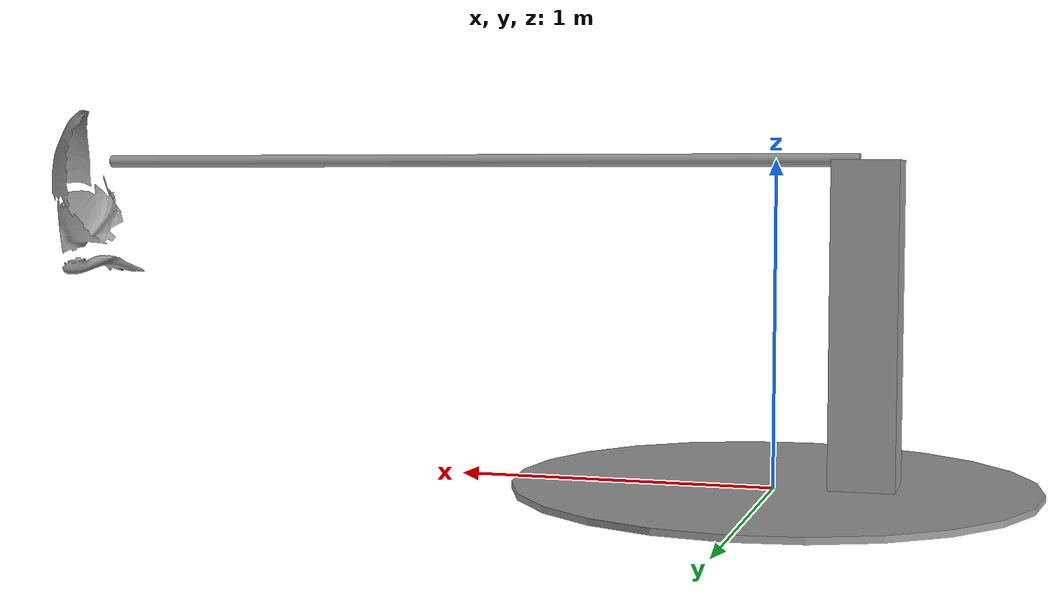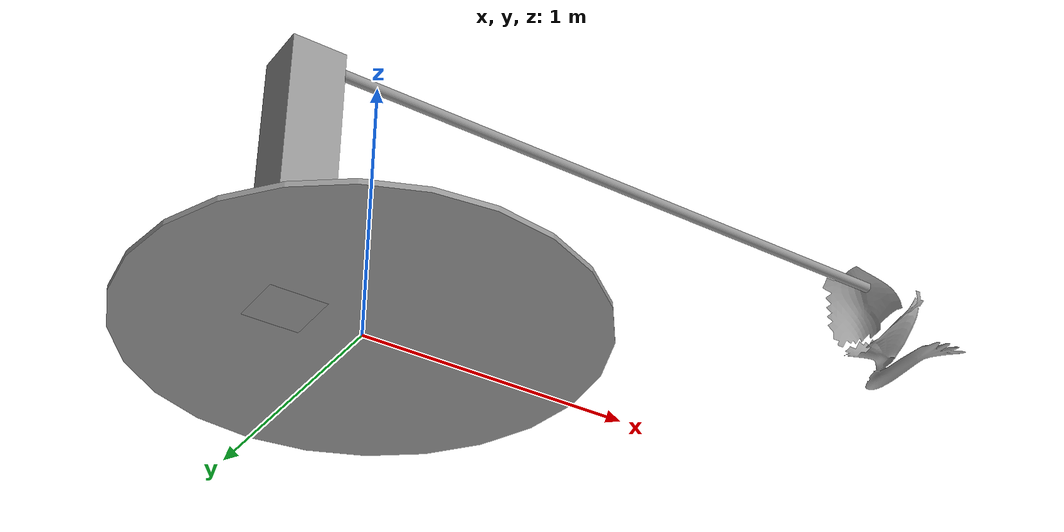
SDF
<sdf version='1.6'>
  <model name='mouse_hind_leg'>
    <pose>0 0 0 0 0 0</pose>
    <link name="base">
      <kinematic>true</kinematic>
      <inertial>
        <mass>5000</mass>
      </inertial>
      <visual name="vis_plate_on_ground">
        <pose>0 0 0.01 0 0 0</pose>
        <geometry>
          <cylinder>
            <radius>0.8</radius>
            <length>0.02</length>
          </cylinder>
        </geometry>
        <material>
          <script>
            <uri>file://media/materials/scripts/gazebo.material</uri>
            <name>Gazebo/Grey</name>
          </script>
        </material>
      </visual>
      <visual name="vis_pole">
        <pose>-0.275 0 0.5 0 0 0</pose>
        <geometry>
          <box>
            <size>0.2 0.2 1</size>
          </box>
        </geometry>
        <material>
          <script>
            <uri>file://media/materials/scripts/gazebo.material</uri>
            <name>Gazebo/Grey</name>
          </script>
        </material>
      </visual>
      <collision name="col_plate_on_ground">
        <pose>0 0 0.01 0 0 0</pose>
        <geometry>
          <cylinder>
            <radius>0.8</radius>
            <length>0.02</length>
          </cylinder>
        </geometry>
      </collision>
      <collision name="col_pole">
        <pose>-0.275 0 0.5 0 0 0</pose>
        <geometry>
          <box>
            <size>0.2 0.2 1</size>
          </box>
        </geometry>
      </collision>
    </link>

    <link name="upper_link">
      <pose>0 0 1 -1.5708 0 0</pose>
      <self_collide>0</self_collide>
      <inertial>
        <pose>0 0 0.5 0 0 0</pose>
      </inertial>
      <visual name="vis_upper_joint">
        <pose>1.0 0 0 0 1.5708 0</pose>
        <geometry>
          <cylinder>
            <radius>0.02</radius>
            <length>2.5</length>
          </cylinder>
        </geometry>
        <material>
          <script>
            <uri>file://media/materials/scripts/gazebo.material</uri>
            <name>Gazebo/Grey</name>
          </script>
        </material>
      </visual>

      <collision name="col_upper_joint">
        <pose>1.0 0 0 0 1.5708 0</pose>
        <geometry>
          <cylinder>
            <radius>0.02</radius>
            <length>2.5</length>
          </cylinder>
        </geometry>
      </collision>
    </link>

    <!-- pin joint for upper link, at origin of upper link -->
    <joint name="upper_joint" type="revolute">
      <parent>base</parent>
      <child>upper_link</child>
      <axis>
        <xyz>1.0 0 0</xyz>
        <limit>
          <lower>-0.523599</lower>
          <upper>0.523599</upper>
        </limit>
        <dynamics>
          <damping>0.1</damping>
          <friction>0.05</friction>
          <spring_reference>0</spring_reference>
          <spring_stiffness>0</spring_stiffness>
        </dynamics>
        <use_parent_model_frame>true</use_parent_model_frame>
      </axis>
      <physics>
        <provide_feedback>true</provide_feedback>
      </physics>
    </joint>

    <link name='thigh_L_link'>
      <pose frame=''>2.35 0 1 0 0 0</pose>
      <inertial>
        <pose frame=''>0 -0.15 -0.1 0 0 0</pose>
        <mass>1</mass>
        <inertia>
          <ixx>1</ixx>
          <ixy>0</ixy>
          <ixz>0</ixz>
          <iyy>1</iyy>
          <iyz>0</iyz>
          <izz>1</izz>
        </inertia>
      </inertial>
      <collision name='thigh_L_link_collision'>
        <geometry>
          <mesh>
            <scale>1 1 1</scale>
            <uri>model://mouse_v2_model/collisions/COL_obj_thigh.L_convex_hull.dae</uri>
          </mesh>
        </geometry>
      </collision>
      <visual name='thigh_L_link_visual'>
        <geometry>
          <mesh>
            <scale>1 1 1</scale>
            <uri>model://mouse_v2_model/meshes/obj_thigh.L.dae</uri>
          </mesh>
        </geometry>
      </visual>
    </link>
    <joint name='thigh_L_joint' type='revolute'>
      <child>thigh_L_link</child>
      <parent>upper_link</parent>
      <axis>
        <xyz>1 1e-06 -2e-06</xyz>
        <limit>
          <lower>-0.523599</lower>
          <upper>0.523599</upper>
        </limit>
        <dynamics>
          <damping>0.1</damping>
          <friction>0.05</friction>
          <spring_reference>0</spring_reference>
          <spring_stiffness>0</spring_stiffness>
        </dynamics>
        <use_parent_model_frame>1</use_parent_model_frame>
      </axis>
      <physics>
        <provide_feedback>true</provide_feedback>
      </physics>
    </joint>

    <link name='shin_L_link'>
      <pose frame=''>2.35 0 0.8 0 0 0</pose>
      <inertial>
        <pose frame=''>0 -0.1 -0.05 0 -0 0</pose>
        <mass>2</mass>
        <inertia>
          <ixx>1</ixx>
          <ixy>0</ixy>
          <ixz>0</ixz>
          <iyy>1</iyy>
          <iyz>0</iyz>
          <izz>1</izz>
        </inertia>
      </inertial>
      <collision name='shin_L_link_collision'>
        <pose frame=''>-0.000663 0.009381 -0.006255 1e-06 0 -1e-06</pose>
        <geometry>
          <mesh>
            <scale>1 1 1</scale>
            <uri>model://mouse_v2_model/collisions/COL_obj_shin.L_convex_hull.dae</uri>
          </mesh>
        </geometry>
      </collision>
      <visual name='shin_L_link_visual'>
        <pose frame=''>-0.000663 0.009381 -0.006255 1e-06 0 -1e-06</pose>
        <geometry>
          <mesh>
            <scale>1 1 1</scale>
            <uri>model://mouse_v2_model/meshes/obj_shin.L.dae</uri>
          </mesh>
        </geometry>
      </visual>
    </link>
    <joint name='shin_L_joint' type='revolute'>
      <child>shin_L_link</child>
      <parent>thigh_L_link</parent>
      <axis>
        <xyz>1 1e-06 -2e-06</xyz>
        <limit>
          <lower>-0.78</lower>
          <upper>0.78</upper>
        </limit>
        <dynamics>
          <damping>0.1</damping>
          <friction>0.05</friction>
          <spring_reference>0.1</spring_reference>
          <spring_stiffness>0.5</spring_stiffness>
        </dynamics>
        <use_parent_model_frame>1</use_parent_model_frame>
      </axis>
      <physics>
        <provide_feedback>true</provide_feedback>
      </physics>
    </joint>

    <link name='shin_lower_L_link'>
      <pose frame=''>2.35 0 0.65 0 0 0</pose>
      <inertial>
        <pose frame=''>0 0 0 0 -0 0</pose>
        <mass>2</mass>
        <inertia>
          <ixx>1</ixx>
          <ixy>0</ixy>
          <ixz>0</ixz>
          <iyy>1</iyy>
          <iyz>0</iyz>
          <izz>1</izz>
        </inertia>
      </inertial>
      <collision name='shin_lower_L_link_collision'>
        <pose frame=''>0.000457 -0.007472 -0.000436 1e-06 0 -1e-06</pose>
        <geometry>
          <mesh>
            <scale>1 1 1</scale>
            <uri>model://mouse_v2_model/collisions/COL_obj_shin_lower.L_convex_hull.dae</uri>
          </mesh>
        </geometry>
      </collision>
      <visual name='shin_lower_L_link_visual'>
        <pose frame=''>0.000457 -0.007472 -0.000436 1e-06 0 -1e-06</pose>
        <geometry>
          <mesh>
            <scale>1 1 1</scale>
            <uri>model://mouse_v2_model/meshes/obj_shin_lower.L.dae</uri>
          </mesh>
        </geometry>
      </visual>
    </link>
    <joint name='shin_lower_L_joint' type='revolute'>
      <child>shin_lower_L_link</child>
      <parent>shin_L_link</parent>
      <axis>
        <xyz>1 1e-06 -2e-06</xyz>
        <limit>
          <lower>-1000000.0</lower>
          <upper>1000000.0</upper>
        </limit>
        <dynamics>
          <damping>0.1</damping>
          <friction>0.05</friction>
          <spring_reference>0.1</spring_reference>
          <spring_stiffness>0.5</spring_stiffness>
        </dynamics>
        <use_parent_model_frame>1</use_parent_model_frame>
      </axis>
      <physics>
        <provide_feedback>true</provide_feedback>
      </physics>
    </joint>

    <static>false</static>
    <self_collide>false</self_collide>
  </model>
</sdf>
